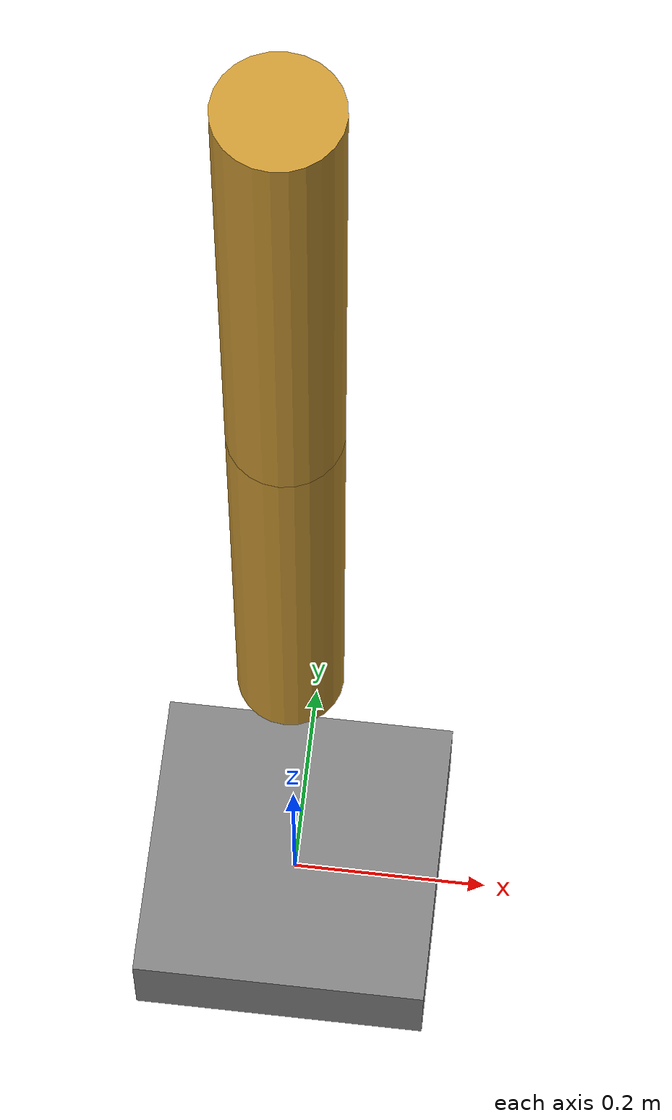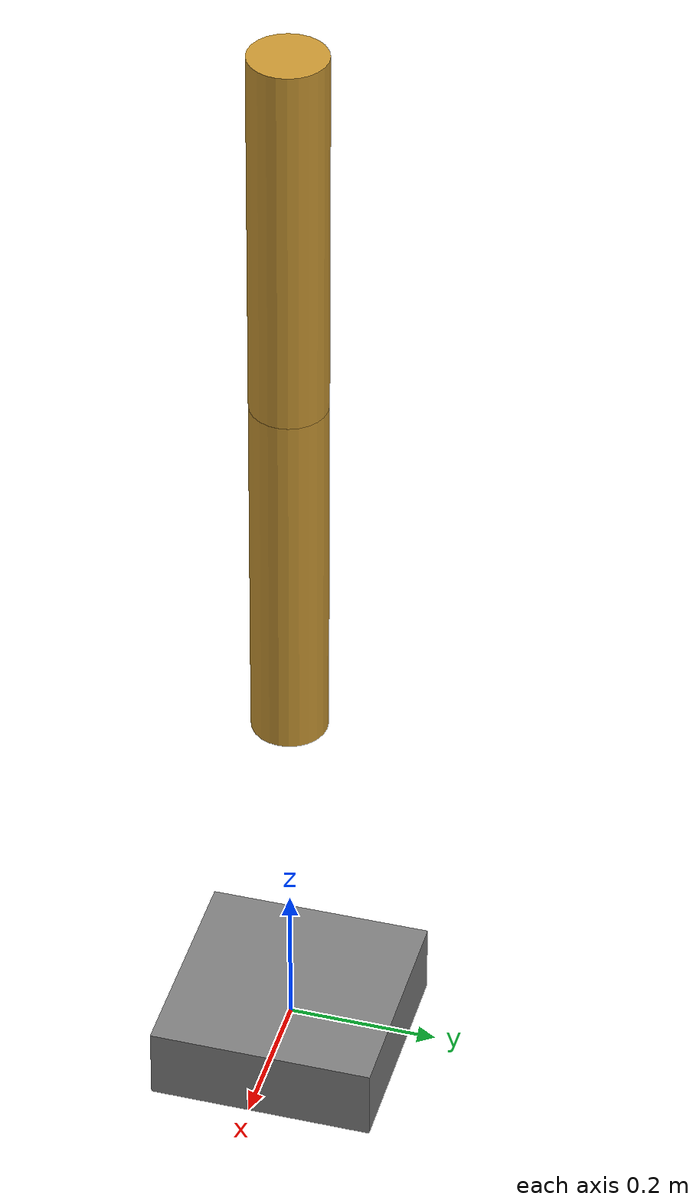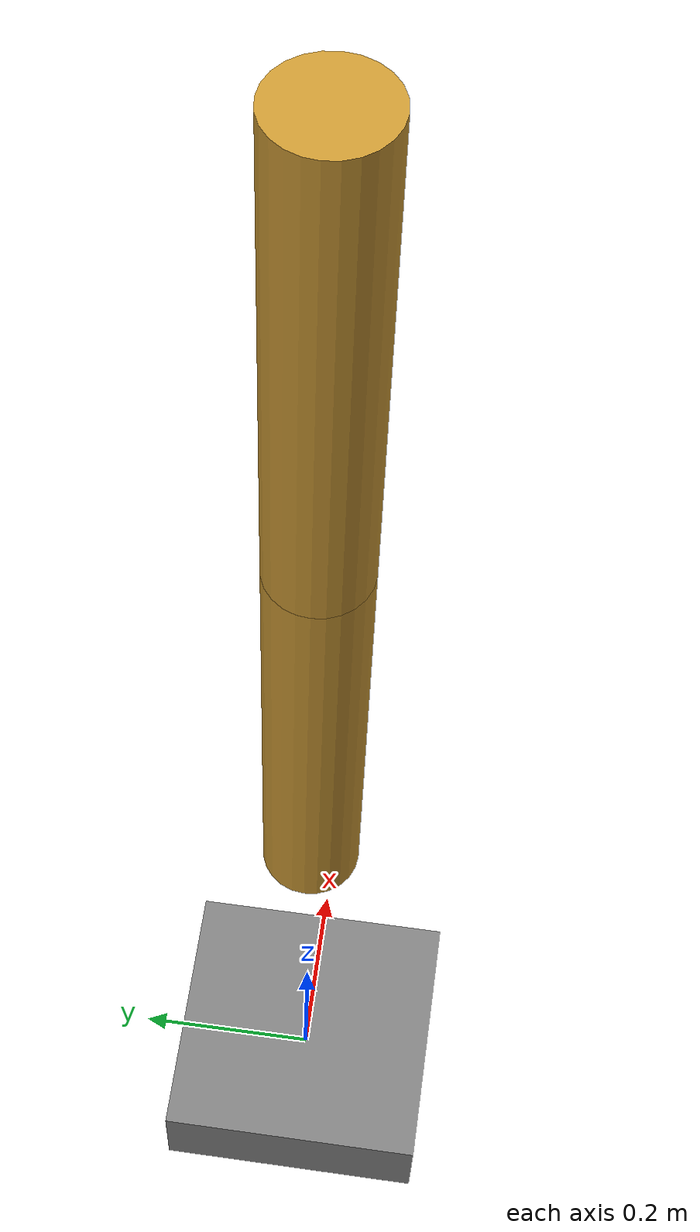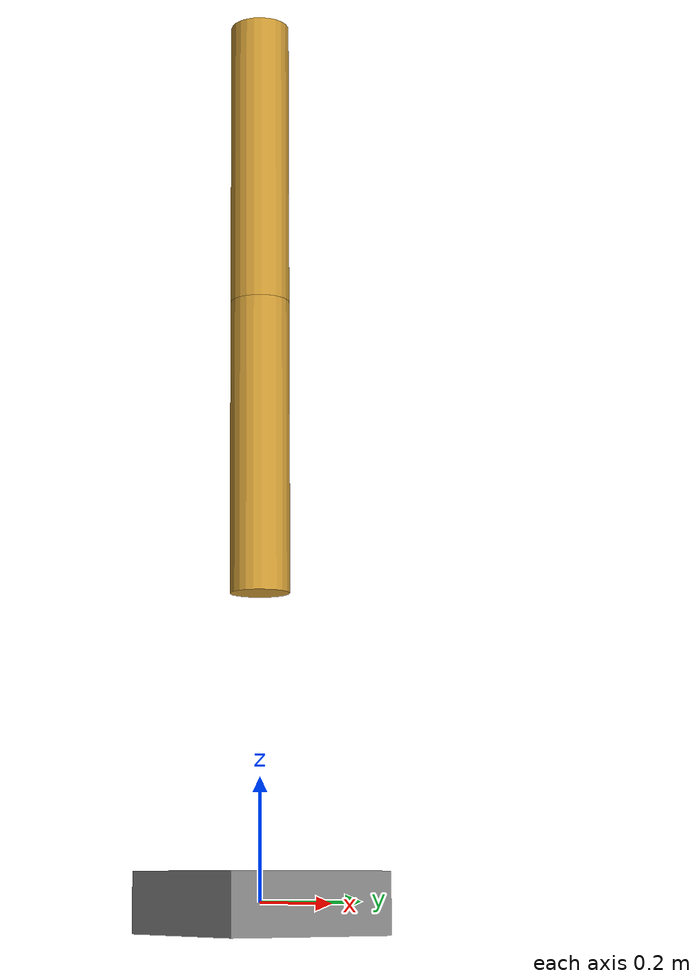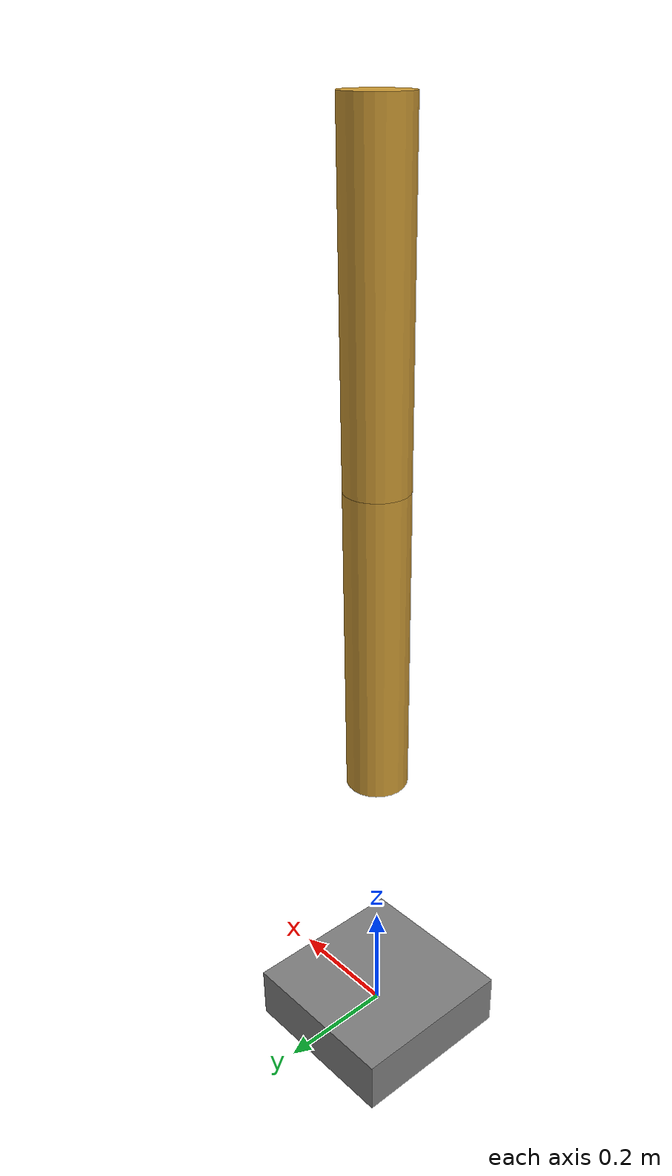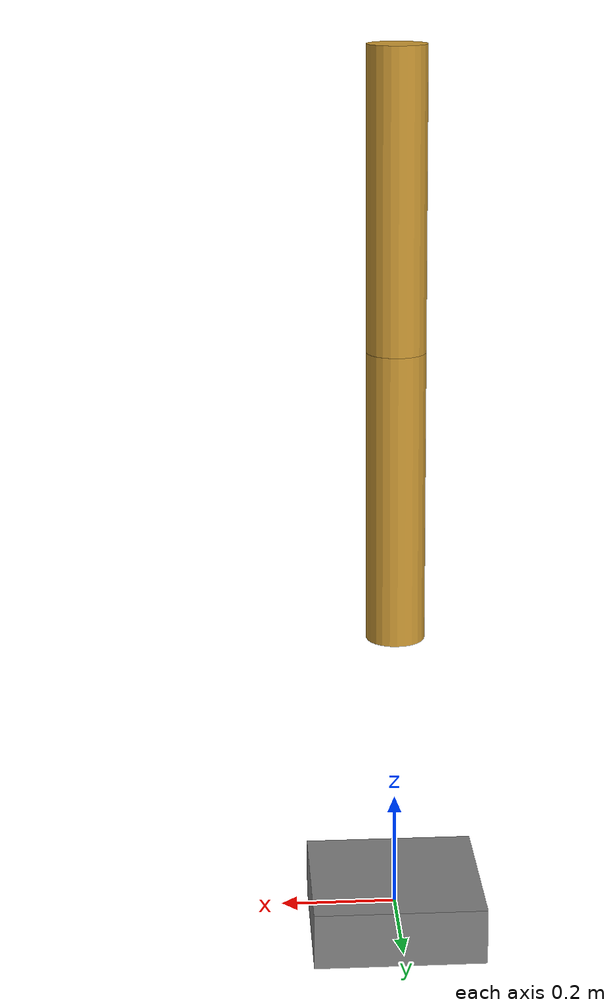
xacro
<?xml version="1.0"?>
<robot xmlns:xacro="http://www.ros.org/wiki/xacro" name="param_arm">

  <!-- 定义尺寸属性 -->
  <xacro:property name="arm_length" value="0.5" />
  <xacro:property name="arm_radius" value="0.05" />

  <!-- 定义 arm_segment 宏：一个圆柱体 link + 一个 revolute joint -->
  <xacro:macro name="arm_segment" params="name parent length radius">
    <link name="${name}">
      <visual>
        <origin xyz="0 0 ${length/2}" rpy="0 0 0" />
        <geometry>
          <cylinder radius="${radius}" length="${length}" />
        </geometry>
        <material name="arm_color">
          <color rgba="0.8 0.6 0.2 1.0" />
        </material>
      </visual>
    </link>

    <joint name="${name}_joint" type="revolute">
      <parent link="${parent}" />
      <child link="${name}" />
      <origin xyz="0 0 ${length}" rpy="0 0 0" />
      <axis xyz="0 1 0" />
      <limit lower="-1.57" upper="1.57" effort="100.0" velocity="1.0" />
    </joint>
  </xacro:macro>

  <!-- 基座 link -->
  <link name="base_link">
    <visual>
      <geometry>
        <box size="0.3 0.3 0.1" />
      </geometry>
      <material name="grey">
        <color rgba="0.5 0.5 0.5 1.0" />
      </material>
    </visual>
  </link>

  <!-- 第一段臂：连接到 base_link -->
  <xacro:arm_segment name="segment_1" parent="base_link"
    length="${arm_length}" radius="${arm_radius}" />

  <!-- 第二段臂：连接到 segment_1 -->
  <xacro:arm_segment name="segment_2" parent="segment_1"
    length="${arm_length}" radius="${arm_radius}" />

</robot>
